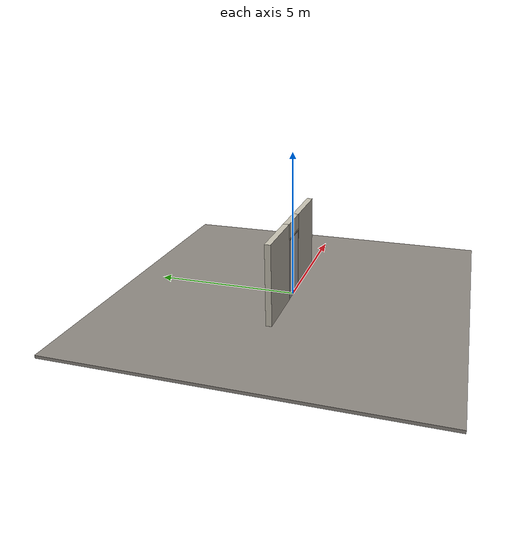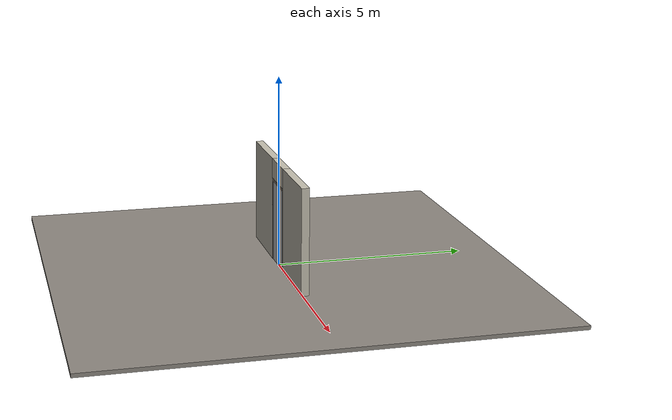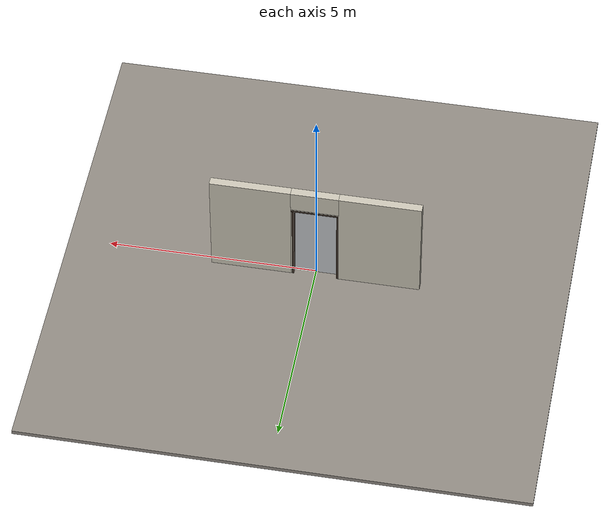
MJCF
<?xml version="1.0" ?>
<mujoco model="db0221_pivot_minimal">
  <compiler angle="radian" meshdir="../../hardware" texturedir="../../textures" autolimits="true" inertiafromgeom="false"/>
  <option timestep="0.002" integrator="implicitfast" cone="elliptic" impratio="10" noslip_iterations="3">
    <flag multiccd="enable"/>
  </option>
  <size memory="16M"/>
  <default>
    <geom condim="4" solref="0.005 1" solimp="0.95 0.99 0.001"/>
    <joint solreflimit="0.005 1" solimplimit="0.95 0.99 0.001"/>
    <tendon solreflimit="0.005 1"/>
    <equality solref="0.002 1"/>
  </default>
  <visual>
    <headlight ambient="0.4 0.4 0.4" diffuse="0.7 0.7 0.7" specular="0.2 0.2 0.2"/>
    <quality shadowsize="4096"/>
    <map znear="0.01" zfar="60"/>
  </visual>
  <asset>
    <material name="mat_floor" rgba="0.55 0.53 0.5 1" specular="0.2" shininess="0.15" reflectance="0"/>
    <material name="mat_wall" rgba="0.78 0.76 0.7 1" specular="0.2" shininess="0.1" reflectance="0"/>
    <material name="mat_leaf" rgba="0.75 0.76 0.77 1" specular="0.8" shininess="0.65" reflectance="0.4"/>
    <material name="mat_leaf_brace" rgba="0.675 0.684 0.693 1" specular="0.2" shininess="0.2" reflectance="0"/>
    <material name="mat_hinge" rgba="0.65 0.66 0.68 1" specular="0.74" shininess="0.5" reflectance="0.36"/>
    <material name="mat_frame" rgba="0.22 0.17 0.13 1" specular="0.8" shininess="0.6" reflectance="0.4"/>
    <material name="mat_closer" rgba="0.75 0.76 0.77 1" specular="0.8" shininess="0.65" reflectance="0.4"/>
    <material name="mat_stop" rgba="0.9 0.9 0.92 1" specular="0.8" shininess="0.9" reflectance="0.4"/>
    <texture name="skybox" type="skybox" builtin="gradient" rgb1="0.6 0.7 0.85" rgb2="0.9 0.92 0.95" width="256" height="256"/>
  </asset>
  <worldbody>
    <light name="sun" pos="1.5 -2.5 4" dir="-0.3 0.5 -0.8" directional="true" diffuse="0.8 0.8 0.8" specular="0.3 0.3 0.3" castshadow="true"/>
    <light name="fill" pos="-1.5 2.5 3" dir="0.3 -0.5 -0.7" directional="true" diffuse="0.35 0.35 0.4" castshadow="false"/>
    <camera name="robot_view" pos="0 -2.573875 1.811325" xyaxes="1 0 0 0 0.26963 0.962964" fovy="52"/>
    <camera name="far_view" pos="0 2.699875 1.811325" xyaxes="-1 0 0 0 -0.26963 0.962964" fovy="52"/>
    <camera name="iso" pos="2.004025 -2.151975 2.233225" xyaxes="0.741536 0.670913 0 -0.242917 0.268487 0.932151" fovy="46"/>
    <camera name="detail_handle" pos="0.574 -0.737 1.33" xyaxes="0.97561 0.219512 0 -0.070934 0.315262 0.94635" fovy="38"/>
    <geom name="floor" type="box" size="6 6 0.05" pos="0 0 -0.05" material="mat_floor" group="0" contype="1" conaffinity="1" friction="0.8 0.005 0.0001" density="2400"/>
    <geom name="wall_left" type="box" size="0.9745 0.1 1.373" pos="-1.5255 0.063 1.373" material="mat_wall" group="0" contype="1" conaffinity="1" friction="0.6 0.005 0.0001" density="800"/>
    <geom name="wall_right" type="box" size="0.9595 0.1 1.373" pos="1.5405 0.063 1.373" material="mat_wall" group="0" contype="1" conaffinity="1" friction="0.6 0.005 0.0001" density="800"/>
    <geom name="wall_header" type="box" size="0.566 0.1 0.2625" pos="0.015 0.063 2.4835" material="mat_wall" group="0" contype="1" conaffinity="1" friction="0.6 0.005 0.0001" density="800"/>
    <geom name="jamb_hinge" type="box" size="0.0225 0.1 1.073" pos="-0.5285 0.063 1.073" material="mat_frame" group="0" contype="1" conaffinity="1" friction="0.6 0.005 0.0001" density="300"/>
    <geom name="jamb_strike" type="box" size="0.0225 0.1 1.073" pos="0.5285 0.063 1.073" material="mat_frame" group="0" contype="1" conaffinity="1" friction="0.6 0.005 0.0001" density="300"/>
    <geom name="stud_strike" type="box" size="0.015 0.1 1.073" pos="0.566 0.063 1.073" material="mat_wall" group="0" contype="1" conaffinity="1" friction="0.6 0.005 0.0001" density="500"/>
    <geom name="jamb_head" type="box" size="0.566 0.1 0.0225" pos="0.015 0.063 2.1685" material="mat_frame" group="0" contype="1" conaffinity="1" friction="0.6 0.005 0.0001" density="300"/>
    <geom name="head_stud" type="box" size="0.566 0.1 0.015" pos="0.015 0.063 2.206" material="mat_wall" group="0" contype="1" conaffinity="1" friction="0.6 0.005 0.0001" density="500"/>
    <site name="approach_point" pos="0 -1.5 0" quat="1 0 0 0" size="0.05" rgba="0.2 0.9 0.2 0.5" group="4"/>
    <site name="goal_point" pos="0 1.5 0" quat="1 0 0 0" size="0.05" rgba="0.2 0.9 0.2 0.5" group="4"/>
    <site name="door_plane_center" pos="0 0 1.073" quat="1 0 0 0" size="0.02" rgba="0.2 0.9 0.2 0.5" group="4"/>
    <body name="leaf" pos="-0.506 0 0">
      <inertial pos="0.506 0 1.075" mass="56.248841" quat="-0.5 0.5 0.5 0.5" diaginertia="4.704278052 21.36310349 26.033632238"/>
      <joint name="leaf_hinge" type="hinge" axis="0 0 -1" pos="0.2 0 0" limited="true" range="0 1.570796" damping="8.3854" frictionloss="0.972594" stiffness="15.673579" springref="-1.79155" armature="0.02"/>
      <geom name="leaf_slab" type="box" size="0.5 0.03 1.067" pos="0.506 0 1.075" material="mat_leaf" group="0" contype="1" conaffinity="1" friction="0.35 0.005 0.0001" density="1"/>
      <site name="leaf_edge_mid" pos="1.006 0 1.067" quat="1 0 0 0" size="0.02" rgba="0.2 0.9 0.2 0.5" group="4"/>
    </body>
  </worldbody>
  <sensor>
    <jointpos name="leaf_hinge_pos" joint="leaf_hinge"/>
    <jointvel name="leaf_hinge_vel" joint="leaf_hinge"/>
  </sensor>
</mujoco>
